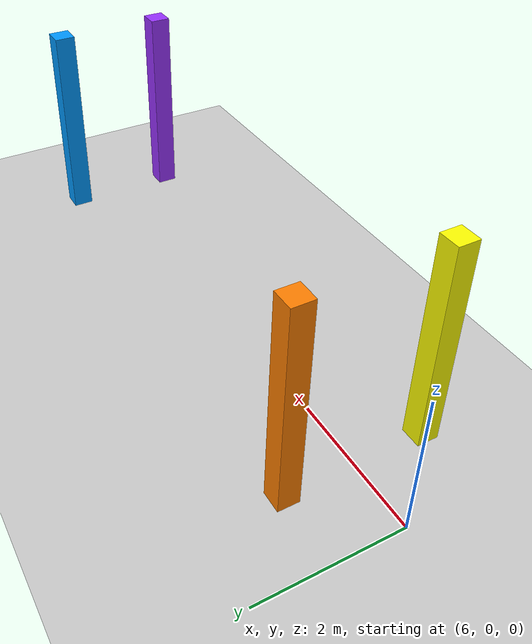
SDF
<sdf version="1.6">
 <world name="ground_world">
  <include><uri>model://sun</uri></include>
  <include><uri>model://ground_plane</uri></include>
  <model name="pole_1">
   <static>true</static>
   <pose>7.0 1.0 1.5 0 0 0</pose>
   <link name="link">
    <collision name="collision"><geometry><box><size>0.3 0.3 3</size></box></geometry></collision>
    <visual name="visual">
     <geometry><box><size>0.3 0.3 3</size></box></geometry>
     <material><ambient>1 0.5 0 1</ambient><diffuse>1 0.5 0 1</diffuse></material>
    </visual>
   </link>
  </model>
  <model name="pole_2">
   <static>true</static>
   <pose>7.0 -1.0 1.5 0 0 0</pose>
   <link name="link">
    <collision name="collision"><geometry><box><size>0.3 0.3 3</size></box></geometry></collision>
    <visual name="visual">
     <geometry><box><size>0.3 0.3 3</size></box></geometry>
     <material><ambient>1 1 0 1</ambient><diffuse>1 1 0 1</diffuse></material>
    </visual>
   </link>
  </model>
  <model name="pole_3">
   <static>true</static>
   <pose>14.0 0.8 1.5 0 0 0</pose>
   <link name="link">
    <collision name="collision"><geometry><box><size>0.3 0.3 3</size></box></geometry></collision>
    <visual name="visual">
     <geometry><box><size>0.3 0.3 3</size></box></geometry>
     <material><ambient>0 0.6 1 1</ambient><diffuse>0 0.6 1 1</diffuse></material>
    </visual>
   </link>
  </model>
  <model name="pole_4">
   <static>true</static>
   <pose>14.0 -0.8 1.5 0 0 0</pose>
   <link name="link">
    <collision name="collision"><geometry><box><size>0.3 0.3 3</size></box></geometry></collision>
    <visual name="visual">
     <geometry><box><size>0.3 0.3 3</size></box></geometry>
     <material><ambient>0.6 0.2 1 1</ambient><diffuse>0.6 0.2 1 1</diffuse></material>
    </visual>
   </link>
  </model>
 </world>
</sdf>
